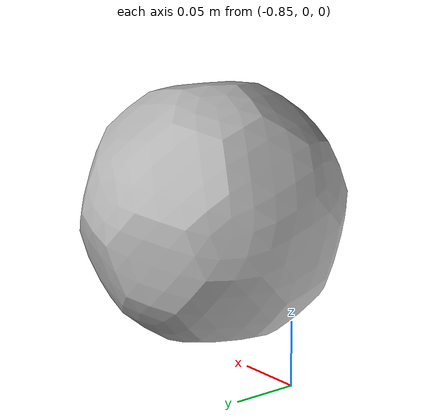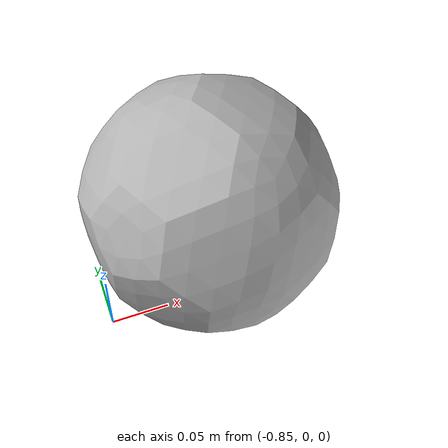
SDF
<?xml version='1.0'?>
<sdf version='1.7'>
  <model name='football'>
      <static>0</static>
      <link name='chassis'>
        <inertial>
          <mass>0.001</mass>
          <inertia>
            <ixx>1.664e-05</ixx>
            <iyy>1.664e-05</iyy>
            <izz>1.664e-05</izz>
            <ixy>0</ixy>
            <ixz>0</ixz>
            <iyz>0</iyz>
          </inertia>
          <pose>0 0 0 0 -0 0</pose>
        </inertial>
        <collision name='collision'>
          <geometry>
            <sphere>
              <radius>0.1</radius>
            </sphere>
          </geometry>
          <max_contacts>10</max_contacts>
          <surface>
            <friction>
              <ode>
                <mu>0.1</mu>
                <mu2>0.1</mu2>
              </ode>
              <torsional>
                <coefficient>1</coefficient>
                <patch_radius>0</patch_radius>
                <surface_radius>0</surface_radius>
                <use_patch_radius>1</use_patch_radius>
                <ode/>
              </torsional>
            </friction>
            <bounce>
              <restitution_coefficient>0.9</restitution_coefficient>
              <threshold>1e+06</threshold>
            </bounce>
            <contact>
              <collide_without_contact>0</collide_without_contact>
              <collide_without_contact_bitmask>1</collide_without_contact_bitmask>
              <collide_bitmask>1</collide_bitmask>
              <ode>
                <soft_cfm>0</soft_cfm>
                <soft_erp>0.2</soft_erp>
                <kp>1e+13</kp>
                <kd>1</kd>
                <max_vel>10</max_vel>
                <min_depth>0</min_depth>
              </ode>
            </contact>
          </surface>
        </collision>
        <visual name='visual'>
          <geometry>
            <mesh>
              <scale>0.1 0.1 0.1</scale>
              <uri>model://robocup_3Dsim_ball/meshes/ball.dae</uri>
            </mesh>
          </geometry>
        </visual>
        <self_collide>0</self_collide>
        <enable_wind>0</enable_wind>
        <kinematic>0</kinematic>
        <sensor name='contact' type='contact'>
          <plugin name='contact' filename='libgazebo_ros_bumper.so'>
            <robotNamespace>football</robotNamespace>
            <frameName>world</frameName>
          </plugin>
          <contact>
            <collision>collision</collision>
            <topic>__default_topic__</topic>
          </contact>
        </sensor>
      </link>
      <pose>-0.76 0 0.11 0 -0 0</pose>
      <plugin name='ball_gazebo' filename='libball_gazebo.so'/>
    </model>
</sdf>
